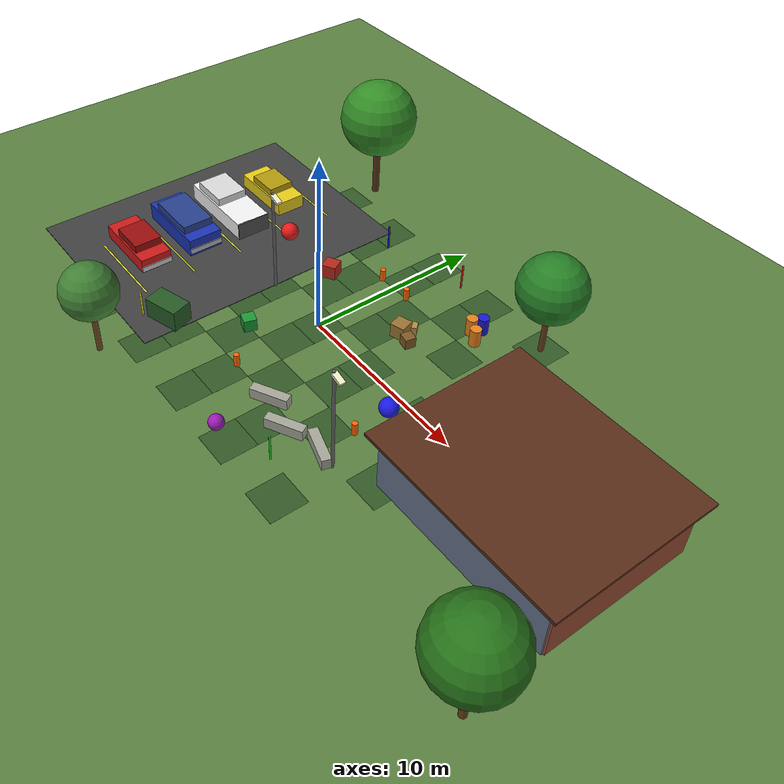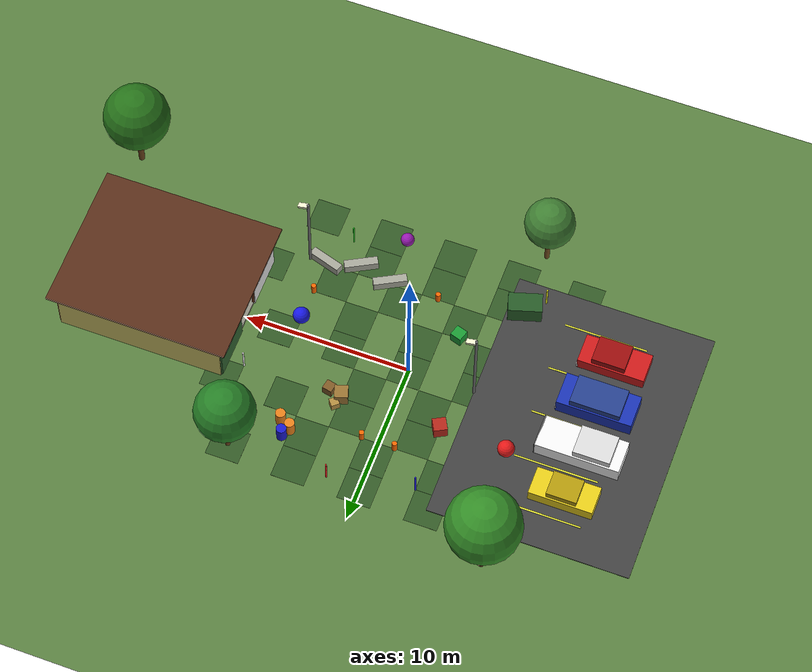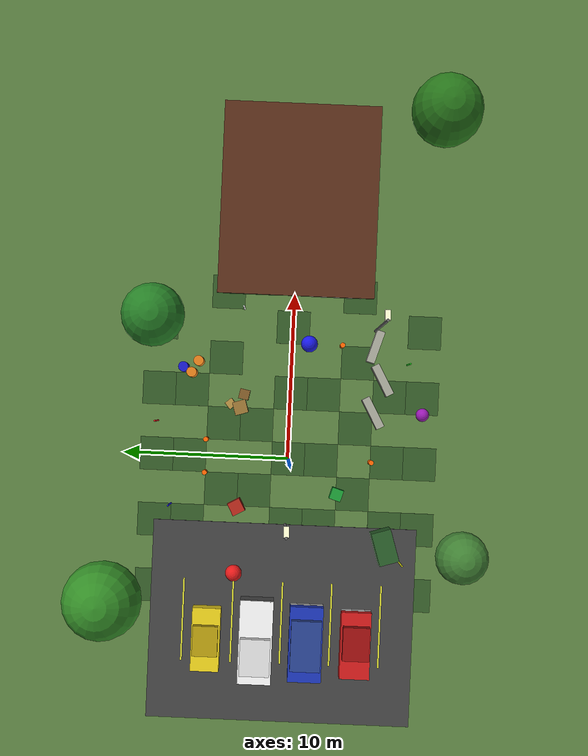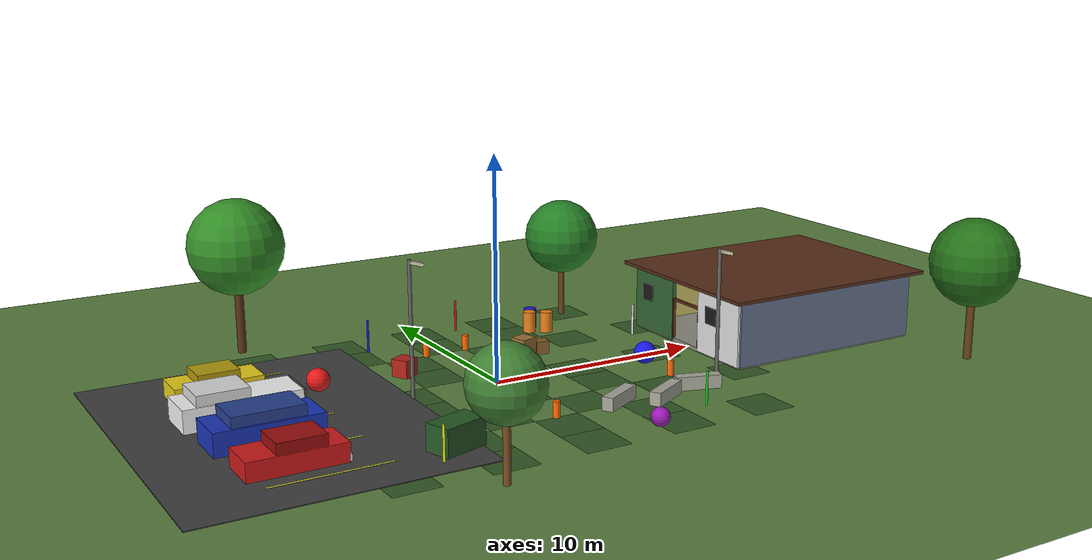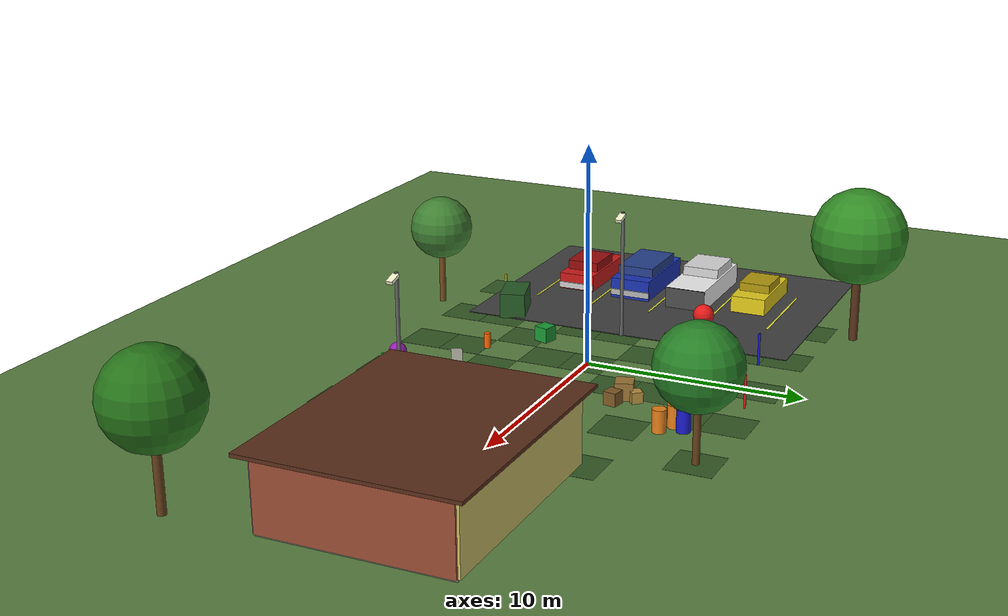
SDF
<sdf version="1.9">
 <world name="iris_sar_field">
  <physics name="1ms" type="ignore">
   <max_step_size>0.001</max_step_size>
   <real_time_factor>1.0</real_time_factor>
  </physics>
  <plugin filename="gz-sim-physics-system" name="gz::sim::systems::Physics"/>
  <plugin filename="gz-sim-sensors-system" name="gz::sim::systems::Sensors">
   <render_engine>ogre2</render_engine>
  </plugin>
  <plugin filename="gz-sim-user-commands-system" name="gz::sim::systems::UserCommands"/>
  <plugin filename="gz-sim-scene-broadcaster-system" name="gz::sim::systems::SceneBroadcaster"/>
  <plugin filename="gz-sim-imu-system" name="gz::sim::systems::Imu"/>
  <plugin filename="gz-sim-navsat-system" name="gz::sim::systems::NavSat"/>
  <plugin filename="gz-sim-apply-link-wrench-system" name="gz::sim::systems::ApplyLinkWrench"/>
  <gravity>0 0 -9.8</gravity>
  <scene><ambient>0.8 0.8 0.8</ambient><background>0.6 0.75 0.9</background><grid>false</grid></scene>
  <spherical_coordinates>
   <latitude_deg>-35.363262</latitude_deg>
   <longitude_deg>149.165237</longitude_deg>
   <elevation>584</elevation>
   <heading_deg>0</heading_deg>
   <surface_model>EARTH_WGS84</surface_model>
  </spherical_coordinates>
  <light type="directional" name="sun">
   <pose>0 0 50 0 0 0</pose>
   <diffuse>0.9 0.85 0.8 1</diffuse>
   <specular>0.3 0.3 0.3 1</specular>
   <direction>-0.4 0.2 -0.8</direction>
  </light>
  <model name="ground_collision">
   <static>true</static>
   <link name="link">
    <collision name="collision">
     <geometry><plane><normal>0 0 1</normal><size>200 200</size></plane></geometry>
    </collision>
   </link>
  </model>
  <model name="ground_base">
   <static>true</static>
   <pose>0 0 0.001 0 0 0</pose>
   <link name="link">
    <visual name="visual">
     <geometry><plane><normal>0 0 1</normal><size>60 60</size></plane></geometry>
     <material><ambient>0.35 0.5 0.25 1</ambient><diffuse>0.35 0.5 0.25 1</diffuse></material>
    </visual>
   </link>
  </model>
  <model name="tile_0_0">
   <static>true</static>
   <pose>0 0 0.002 0 0 0</pose>
   <link name="l">
    <visual name="v">
     <geometry><plane><normal>0 0 1</normal><size>2 2</size></plane></geometry>
     <material><ambient>0.2 0.35 0.15 1</ambient><diffuse>0.2 0.35 0.15 1</diffuse></material>
    </visual>
   </link>
  </model>
  <model name="tile_0_4">
   <static>true</static>
   <pose>4 0 0.002 0 0 0</pose>
   <link name="l">
    <visual name="v">
     <geometry><plane><normal>0 0 1</normal><size>2 2</size></plane></geometry>
     <material><ambient>0.2 0.35 0.15 1</ambient><diffuse>0.2 0.35 0.15 1</diffuse></material>
    </visual>
   </link>
  </model>
  <model name="tile_0_8">
   <static>true</static>
   <pose>8 0 0.002 0 0 0</pose>
   <link name="l">
    <visual name="v">
     <geometry><plane><normal>0 0 1</normal><size>2 2</size></plane></geometry>
     <material><ambient>0.2 0.35 0.15 1</ambient><diffuse>0.2 0.35 0.15 1</diffuse></material>
    </visual>
   </link>
  </model>
  <model name="tile_0_n4">
   <static>true</static>
   <pose>-4 0 0.002 0 0 0</pose>
   <link name="l">
    <visual name="v">
     <geometry><plane><normal>0 0 1</normal><size>2 2</size></plane></geometry>
     <material><ambient>0.2 0.35 0.15 1</ambient><diffuse>0.2 0.35 0.15 1</diffuse></material>
    </visual>
   </link>
  </model>
  <model name="tile_0_n8">
   <static>true</static>
   <pose>-8 0 0.002 0 0 0</pose>
   <link name="l">
    <visual name="v">
     <geometry><plane><normal>0 0 1</normal><size>2 2</size></plane></geometry>
     <material><ambient>0.2 0.35 0.15 1</ambient><diffuse>0.2 0.35 0.15 1</diffuse></material>
    </visual>
   </link>
  </model>
  <model name="tile_0_12">
   <static>true</static>
   <pose>12 0 0.002 0 0 0</pose>
   <link name="l">
    <visual name="v">
     <geometry><plane><normal>0 0 1</normal><size>2 2</size></plane></geometry>
     <material><ambient>0.2 0.35 0.15 1</ambient><diffuse>0.2 0.35 0.15 1</diffuse></material>
    </visual>
   </link>
  </model>
  <model name="tile_0_n12">
   <static>true</static>
   <pose>-12 0 0.002 0 0 0</pose>
   <link name="l">
    <visual name="v">
     <geometry><plane><normal>0 0 1</normal><size>2 2</size></plane></geometry>
     <material><ambient>0.2 0.35 0.15 1</ambient><diffuse>0.2 0.35 0.15 1</diffuse></material>
    </visual>
   </link>
  </model>
  <model name="tile_4_2">
   <static>true</static>
   <pose>2 4 0.002 0 0 0</pose>
   <link name="l">
    <visual name="v">
     <geometry><plane><normal>0 0 1</normal><size>2 2</size></plane></geometry>
     <material><ambient>0.2 0.35 0.15 1</ambient><diffuse>0.2 0.35 0.15 1</diffuse></material>
    </visual>
   </link>
  </model>
  <model name="tile_4_6">
   <static>true</static>
   <pose>6 4 0.002 0 0 0</pose>
   <link name="l">
    <visual name="v">
     <geometry><plane><normal>0 0 1</normal><size>2 2</size></plane></geometry>
     <material><ambient>0.2 0.35 0.15 1</ambient><diffuse>0.2 0.35 0.15 1</diffuse></material>
    </visual>
   </link>
  </model>
  <model name="tile_4_10">
   <static>true</static>
   <pose>10 4 0.002 0 0 0</pose>
   <link name="l">
    <visual name="v">
     <geometry><plane><normal>0 0 1</normal><size>2 2</size></plane></geometry>
     <material><ambient>0.2 0.35 0.15 1</ambient><diffuse>0.2 0.35 0.15 1</diffuse></material>
    </visual>
   </link>
  </model>
  <model name="tile_4_n2">
   <static>true</static>
   <pose>-2 4 0.002 0 0 0</pose>
   <link name="l">
    <visual name="v">
     <geometry><plane><normal>0 0 1</normal><size>2 2</size></plane></geometry>
     <material><ambient>0.2 0.35 0.15 1</ambient><diffuse>0.2 0.35 0.15 1</diffuse></material>
    </visual>
   </link>
  </model>
  <model name="tile_4_n6">
   <static>true</static>
   <pose>-6 4 0.002 0 0 0</pose>
   <link name="l">
    <visual name="v">
     <geometry><plane><normal>0 0 1</normal><size>2 2</size></plane></geometry>
     <material><ambient>0.2 0.35 0.15 1</ambient><diffuse>0.2 0.35 0.15 1</diffuse></material>
    </visual>
   </link>
  </model>
  <model name="tile_4_n10">
   <static>true</static>
   <pose>-10 4 0.002 0 0 0</pose>
   <link name="l">
    <visual name="v">
     <geometry><plane><normal>0 0 1</normal><size>2 2</size></plane></geometry>
     <material><ambient>0.2 0.35 0.15 1</ambient><diffuse>0.2 0.35 0.15 1</diffuse></material>
    </visual>
   </link>
  </model>
  <model name="tile_n4_2">
   <static>true</static>
   <pose>2 -4 0.002 0 0 0</pose>
   <link name="l">
    <visual name="v">
     <geometry><plane><normal>0 0 1</normal><size>2 2</size></plane></geometry>
     <material><ambient>0.2 0.35 0.15 1</ambient><diffuse>0.2 0.35 0.15 1</diffuse></material>
    </visual>
   </link>
  </model>
  <model name="tile_n4_6">
   <static>true</static>
   <pose>6 -4 0.002 0 0 0</pose>
   <link name="l">
    <visual name="v">
     <geometry><plane><normal>0 0 1</normal><size>2 2</size></plane></geometry>
     <material><ambient>0.2 0.35 0.15 1</ambient><diffuse>0.2 0.35 0.15 1</diffuse></material>
    </visual>
   </link>
  </model>
  <model name="tile_n4_10">
   <static>true</static>
   <pose>10 -4 0.002 0 0 0</pose>
   <link name="l">
    <visual name="v">
     <geometry><plane><normal>0 0 1</normal><size>2 2</size></plane></geometry>
     <material><ambient>0.2 0.35 0.15 1</ambient><diffuse>0.2 0.35 0.15 1</diffuse></material>
    </visual>
   </link>
  </model>
  <model name="tile_n4_n2">
   <static>true</static>
   <pose>-2 -4 0.002 0 0 0</pose>
   <link name="l">
    <visual name="v">
     <geometry><plane><normal>0 0 1</normal><size>2 2</size></plane></geometry>
     <material><ambient>0.2 0.35 0.15 1</ambient><diffuse>0.2 0.35 0.15 1</diffuse></material>
    </visual>
   </link>
  </model>
  <model name="tile_n4_n6">
   <static>true</static>
   <pose>-6 -4 0.002 0 0 0</pose>
   <link name="l">
    <visual name="v">
     <geometry><plane><normal>0 0 1</normal><size>2 2</size></plane></geometry>
     <material><ambient>0.2 0.35 0.15 1</ambient><diffuse>0.2 0.35 0.15 1</diffuse></material>
    </visual>
   </link>
  </model>
  <model name="tile_n4_n10">
   <static>true</static>
   <pose>-10 -4 0.002 0 0 0</pose>
   <link name="l">
    <visual name="v">
     <geometry><plane><normal>0 0 1</normal><size>2 2</size></plane></geometry>
     <material><ambient>0.2 0.35 0.15 1</ambient><diffuse>0.2 0.35 0.15 1</diffuse></material>
    </visual>
   </link>
  </model>
  <model name="tile_8_0">
   <static>true</static>
   <pose>0 8 0.002 0 0 0</pose>
   <link name="l">
    <visual name="v">
     <geometry><plane><normal>0 0 1</normal><size>2 2</size></plane></geometry>
     <material><ambient>0.2 0.35 0.15 1</ambient><diffuse>0.2 0.35 0.15 1</diffuse></material>
    </visual>
   </link>
  </model>
  <model name="tile_8_4">
   <static>true</static>
   <pose>4 8 0.002 0 0 0</pose>
   <link name="l">
    <visual name="v">
     <geometry><plane><normal>0 0 1</normal><size>2 2</size></plane></geometry>
     <material><ambient>0.2 0.35 0.15 1</ambient><diffuse>0.2 0.35 0.15 1</diffuse></material>
    </visual>
   </link>
  </model>
  <model name="tile_8_8">
   <static>true</static>
   <pose>8 8 0.002 0 0 0</pose>
   <link name="l">
    <visual name="v">
     <geometry><plane><normal>0 0 1</normal><size>2 2</size></plane></geometry>
     <material><ambient>0.2 0.35 0.15 1</ambient><diffuse>0.2 0.35 0.15 1</diffuse></material>
    </visual>
   </link>
  </model>
  <model name="tile_8_n4">
   <static>true</static>
   <pose>-4 8 0.002 0 0 0</pose>
   <link name="l">
    <visual name="v">
     <geometry><plane><normal>0 0 1</normal><size>2 2</size></plane></geometry>
     <material><ambient>0.2 0.35 0.15 1</ambient><diffuse>0.2 0.35 0.15 1</diffuse></material>
    </visual>
   </link>
  </model>
  <model name="tile_8_n8">
   <static>true</static>
   <pose>-8 8 0.002 0 0 0</pose>
   <link name="l">
    <visual name="v">
     <geometry><plane><normal>0 0 1</normal><size>2 2</size></plane></geometry>
     <material><ambient>0.2 0.35 0.15 1</ambient><diffuse>0.2 0.35 0.15 1</diffuse></material>
    </visual>
   </link>
  </model>
  <model name="tile_n8_0">
   <static>true</static>
   <pose>0 -8 0.002 0 0 0</pose>
   <link name="l">
    <visual name="v">
     <geometry><plane><normal>0 0 1</normal><size>2 2</size></plane></geometry>
     <material><ambient>0.2 0.35 0.15 1</ambient><diffuse>0.2 0.35 0.15 1</diffuse></material>
    </visual>
   </link>
  </model>
  <model name="tile_n8_4">
   <static>true</static>
   <pose>4 -8 0.002 0 0 0</pose>
   <link name="l">
    <visual name="v">
     <geometry><plane><normal>0 0 1</normal><size>2 2</size></plane></geometry>
     <material><ambient>0.2 0.35 0.15 1</ambient><diffuse>0.2 0.35 0.15 1</diffuse></material>
    </visual>
   </link>
  </model>
  <model name="tile_n8_8">
   <static>true</static>
   <pose>8 -8 0.002 0 0 0</pose>
   <link name="l">
    <visual name="v">
     <geometry><plane><normal>0 0 1</normal><size>2 2</size></plane></geometry>
     <material><ambient>0.2 0.35 0.15 1</ambient><diffuse>0.2 0.35 0.15 1</diffuse></material>
    </visual>
   </link>
  </model>
  <model name="tile_n8_n4">
   <static>true</static>
   <pose>-4 -8 0.002 0 0 0</pose>
   <link name="l">
    <visual name="v">
     <geometry><plane><normal>0 0 1</normal><size>2 2</size></plane></geometry>
     <material><ambient>0.2 0.35 0.15 1</ambient><diffuse>0.2 0.35 0.15 1</diffuse></material>
    </visual>
   </link>
  </model>
  <model name="tile_n8_n8">
   <static>true</static>
   <pose>-8 -8 0.002 0 0 0</pose>
   <link name="l">
    <visual name="v">
     <geometry><plane><normal>0 0 1</normal><size>2 2</size></plane></geometry>
     <material><ambient>0.2 0.35 0.15 1</ambient><diffuse>0.2 0.35 0.15 1</diffuse></material>
    </visual>
   </link>
  </model>
  <model name="tile_2_2">
   <static>true</static>
   <pose>2 2 0.002 0 0 0</pose>
   <link name="l">
    <visual name="v">
     <geometry><plane><normal>0 0 1</normal><size>2 2</size></plane></geometry>
     <material><ambient>0.2 0.35 0.15 1</ambient><diffuse>0.2 0.35 0.15 1</diffuse></material>
    </visual>
   </link>
  </model>
  <model name="tile_2_n2">
   <static>true</static>
   <pose>-2 2 0.002 0 0 0</pose>
   <link name="l">
    <visual name="v">
     <geometry><plane><normal>0 0 1</normal><size>2 2</size></plane></geometry>
     <material><ambient>0.2 0.35 0.15 1</ambient><diffuse>0.2 0.35 0.15 1</diffuse></material>
    </visual>
   </link>
  </model>
  <model name="tile_n2_0">
   <static>true</static>
   <pose>0 -2 0.002 0 0 0</pose>
   <link name="l">
    <visual name="v">
     <geometry><plane><normal>0 0 1</normal><size>2 2</size></plane></geometry>
     <material><ambient>0.2 0.35 0.15 1</ambient><diffuse>0.2 0.35 0.15 1</diffuse></material>
    </visual>
   </link>
  </model>
  <model name="tile_n2_4">
   <static>true</static>
   <pose>4 -2 0.002 0 0 0</pose>
   <link name="l">
    <visual name="v">
     <geometry><plane><normal>0 0 1</normal><size>2 2</size></plane></geometry>
     <material><ambient>0.2 0.35 0.15 1</ambient><diffuse>0.2 0.35 0.15 1</diffuse></material>
    </visual>
   </link>
  </model>
  <model name="tile_n2_n4">
   <static>true</static>
   <pose>-4 -2 0.002 0 0 0</pose>
   <link name="l">
    <visual name="v">
     <geometry><plane><normal>0 0 1</normal><size>2 2</size></plane></geometry>
     <material><ambient>0.2 0.35 0.15 1</ambient><diffuse>0.2 0.35 0.15 1</diffuse></material>
    </visual>
   </link>
  </model>
  <model name="tile_6_0">
   <static>true</static>
   <pose>0 6 0.002 0 0 0</pose>
   <link name="l">
    <visual name="v">
     <geometry><plane><normal>0 0 1</normal><size>2 2</size></plane></geometry>
     <material><ambient>0.2 0.35 0.15 1</ambient><diffuse>0.2 0.35 0.15 1</diffuse></material>
    </visual>
   </link>
  </model>
  <model name="tile_6_4">
   <static>true</static>
   <pose>4 6 0.002 0 0 0</pose>
   <link name="l">
    <visual name="v">
     <geometry><plane><normal>0 0 1</normal><size>2 2</size></plane></geometry>
     <material><ambient>0.2 0.35 0.15 1</ambient><diffuse>0.2 0.35 0.15 1</diffuse></material>
    </visual>
   </link>
  </model>
  <model name="tile_6_n4">
   <static>true</static>
   <pose>-4 6 0.002 0 0 0</pose>
   <link name="l">
    <visual name="v">
     <geometry><plane><normal>0 0 1</normal><size>2 2</size></plane></geometry>
     <material><ambient>0.2 0.35 0.15 1</ambient><diffuse>0.2 0.35 0.15 1</diffuse></material>
    </visual>
   </link>
  </model>
  <model name="tile_n6_0">
   <static>true</static>
   <pose>0 -6 0.002 0 0 0</pose>
   <link name="l">
    <visual name="v">
     <geometry><plane><normal>0 0 1</normal><size>2 2</size></plane></geometry>
     <material><ambient>0.2 0.35 0.15 1</ambient><diffuse>0.2 0.35 0.15 1</diffuse></material>
    </visual>
   </link>
  </model>
  <model name="tile_n6_4">
   <static>true</static>
   <pose>4 -6 0.002 0 0 0</pose>
   <link name="l">
    <visual name="v">
     <geometry><plane><normal>0 0 1</normal><size>2 2</size></plane></geometry>
     <material><ambient>0.2 0.35 0.15 1</ambient><diffuse>0.2 0.35 0.15 1</diffuse></material>
    </visual>
   </link>
  </model>
  <model name="tile_n6_n4">
   <static>true</static>
   <pose>-4 -6 0.002 0 0 0</pose>
   <link name="l">
    <visual name="v">
     <geometry><plane><normal>0 0 1</normal><size>2 2</size></plane></geometry>
     <material><ambient>0.2 0.35 0.15 1</ambient><diffuse>0.2 0.35 0.15 1</diffuse></material>
    </visual>
   </link>
  </model>
  <model name="house_floor">
   <static>true</static>
   <pose>15 0 0.1 0 0 0</pose>
   <link name="link">
    <collision name="collision"><geometry><box><size>10 8 0.2</size></box></geometry></collision>
    <visual name="visual">
     <geometry><box><size>10 8 0.2</size></box></geometry>
     <material><ambient>0.55 0.55 0.5 1</ambient><diffuse>0.55 0.55 0.5 1</diffuse></material>
    </visual>
   </link>
  </model>
  <model name="house_wall_back">
   <static>true</static>
   <pose>20 0 1.6 0 0 0</pose>
   <link name="link">
    <collision name="collision"><geometry><box><size>0.2 8 3</size></box></geometry></collision>
    <visual name="visual">
     <geometry><box><size>0.2 8 3</size></box></geometry>
     <material><ambient>0.6 0.3 0.2 1</ambient><diffuse>0.6 0.3 0.2 1</diffuse></material>
    </visual>
   </link>
  </model>
  <model name="house_wall_left">
   <static>true</static>
   <pose>15 -4 1.6 0 0 0</pose>
   <link name="link">
    <collision name="collision"><geometry><box><size>10 0.2 3</size></box></geometry></collision>
    <visual name="visual">
     <geometry><box><size>10 0.2 3</size></box></geometry>
     <material><ambient>0.4 0.45 0.55 1</ambient><diffuse>0.4 0.45 0.55 1</diffuse></material>
    </visual>
   </link>
  </model>
  <model name="house_wall_right">
   <static>true</static>
   <pose>15 4 1.6 0 0 0</pose>
   <link name="link">
    <collision name="collision"><geometry><box><size>10 0.2 3</size></box></geometry></collision>
    <visual name="visual">
     <geometry><box><size>10 0.2 3</size></box></geometry>
     <material><ambient>0.8 0.75 0.4 1</ambient><diffuse>0.8 0.75 0.4 1</diffuse></material>
    </visual>
   </link>
  </model>
  <model name="house_wall_front_left">
   <static>true</static>
   <pose>10 -2.5 1.6 0 0 0</pose>
   <link name="link">
    <collision name="collision"><geometry><box><size>0.2 3 3</size></box></geometry></collision>
    <visual name="visual">
     <geometry><box><size>0.2 3 3</size></box></geometry>
     <material><ambient>0.9 0.9 0.9 1</ambient><diffuse>0.9 0.9 0.9 1</diffuse></material>
    </visual>
   </link>
  </model>
  <model name="house_wall_front_right">
   <static>true</static>
   <pose>10 2.5 1.6 0 0 0</pose>
   <link name="link">
    <collision name="collision"><geometry><box><size>0.2 3 3</size></box></geometry></collision>
    <visual name="visual">
     <geometry><box><size>0.2 3 3</size></box></geometry>
     <material><ambient>0.2 0.4 0.2 1</ambient><diffuse>0.2 0.4 0.2 1</diffuse></material>
    </visual>
   </link>
  </model>
  <model name="house_roof">
   <static>true</static>
   <pose>15 0 3.2 0 0 0</pose>
   <link name="link">
    <collision name="collision"><geometry><box><size>11 9 0.15</size></box></geometry></collision>
    <visual name="visual">
     <geometry><box><size>11 9 0.15</size></box></geometry>
     <material><ambient>0.35 0.18 0.1 1</ambient><diffuse>0.35 0.18 0.1 1</diffuse></material>
    </visual>
   </link>
  </model>
  <model name="window_frame_1">
   <static>true</static>
   <pose>9.89 -2 2.0 0 0 0</pose>
   <link name="link">
    <visual name="v">
     <geometry><box><size>0.05 0.8 0.8</size></box></geometry>
     <material><ambient>0.1 0.1 0.1 1</ambient><diffuse>0.1 0.1 0.1 1</diffuse></material>
    </visual>
   </link>
  </model>
  <model name="window_frame_2">
   <static>true</static>
   <pose>9.89 3 2.0 0 0 0</pose>
   <link name="link">
    <visual name="v">
     <geometry><box><size>0.05 0.8 0.8</size></box></geometry>
     <material><ambient>0.1 0.1 0.1 1</ambient><diffuse>0.1 0.1 0.1 1</diffuse></material>
    </visual>
   </link>
  </model>
  <model name="door_frame">
   <static>true</static>
   <pose>10 0 1.2 0 0 0</pose>
   <link name="link">
    <visual name="top">
     <pose>0 0 0.9 0 0 0</pose>
     <geometry><box><size>0.15 2.1 0.1</size></box></geometry>
     <material><ambient>0.4 0.2 0.1 1</ambient><diffuse>0.4 0.2 0.1 1</diffuse></material>
    </visual>
    <visual name="left">
     <pose>0 -1 0 0 0 0</pose>
     <geometry><box><size>0.15 0.1 1.9</size></box></geometry>
     <material><ambient>0.4 0.2 0.1 1</ambient><diffuse>0.4 0.2 0.1 1</diffuse></material>
    </visual>
    <visual name="right">
     <pose>0 1 0 0 0 0</pose>
     <geometry><box><size>0.15 0.1 1.9</size></box></geometry>
     <material><ambient>0.4 0.2 0.1 1</ambient><diffuse>0.4 0.2 0.1 1</diffuse></material>
    </visual>
   </link>
  </model>
  <model name="parking_lot">
   <static>true</static>
   <pose>-10 0 0.02 0 0 0</pose>
   <link name="link">
    <collision name="collision"><geometry><box><size>12 16 0.04</size></box></geometry></collision>
    <visual name="visual">
     <geometry><box><size>12 16 0.04</size></box></geometry>
     <material><ambient>0.25 0.25 0.25 1</ambient><diffuse>0.25 0.25 0.25 1</diffuse></material>
    </visual>
   </link>
  </model>
  <model name="pl1">
   <static>true</static>
   <pose>-10 -6 0.05 0 0 0</pose>
   <link name="l">
    <visual name="v">
     <geometry><box><size>5 0.1 0.01</size></box></geometry>
     <material><ambient>0.9 0.9 0.2 1</ambient><diffuse>0.9 0.9 0.2 1</diffuse></material>
    </visual>
   </link>
  </model>
  <model name="pl2">
   <static>true</static>
   <pose>-10 -3 0.05 0 0 0</pose>
   <link name="l">
    <visual name="v">
     <geometry><box><size>5 0.1 0.01</size></box></geometry>
     <material><ambient>0.9 0.9 0.2 1</ambient><diffuse>0.9 0.9 0.2 1</diffuse></material>
    </visual>
   </link>
  </model>
  <model name="pl3">
   <static>true</static>
   <pose>-10 0 0.05 0 0 0</pose>
   <link name="l">
    <visual name="v">
     <geometry><box><size>5 0.1 0.01</size></box></geometry>
     <material><ambient>0.9 0.9 0.2 1</ambient><diffuse>0.9 0.9 0.2 1</diffuse></material>
    </visual>
   </link>
  </model>
  <model name="pl4">
   <static>true</static>
   <pose>-10 3 0.05 0 0 0</pose>
   <link name="l">
    <visual name="v">
     <geometry><box><size>5 0.1 0.01</size></box></geometry>
     <material><ambient>0.9 0.9 0.2 1</ambient><diffuse>0.9 0.9 0.2 1</diffuse></material>
    </visual>
   </link>
  </model>
  <model name="pl5">
   <static>true</static>
   <pose>-10 6 0.05 0 0 0</pose>
   <link name="l">
    <visual name="v">
     <geometry><box><size>5 0.1 0.01</size></box></geometry>
     <material><ambient>0.9 0.9 0.2 1</ambient><diffuse>0.9 0.9 0.2 1</diffuse></material>
    </visual>
   </link>
  </model>
  <model name="car_red">
   <static>true</static>
   <pose>-11 -4.5 0.5 0 0 0</pose>
   <link name="link">
    <collision name="c"><geometry><box><size>4 1.8 1.0</size></box></geometry></collision>
    <visual name="body">
     <geometry><box><size>4 1.8 0.8</size></box></geometry>
     <material><ambient>0.8 0.1 0.1 1</ambient><diffuse>0.8 0.1 0.1 1</diffuse></material>
    </visual>
    <visual name="roof">
     <pose>0.2 0 0.6 0 0 0</pose>
     <geometry><box><size>2 1.6 0.5</size></box></geometry>
     <material><ambient>0.6 0.05 0.05 1</ambient><diffuse>0.6 0.05 0.05 1</diffuse></material>
    </visual>
    <visual name="bumper">
     <pose>2 0 -0.2 0 0 0</pose>
     <geometry><box><size>0.1 1.8 0.3</size></box></geometry>
     <material><ambient>0.8 0.8 0.8 1</ambient><diffuse>0.8 0.8 0.8 1</diffuse></material>
    </visual>
   </link>
  </model>
  <model name="car_blue">
   <static>true</static>
   <pose>-11 -1.5 0.6 0 0 0</pose>
   <link name="link">
    <collision name="c"><geometry><box><size>4.5 2 1.2</size></box></geometry></collision>
    <visual name="body">
     <geometry><box><size>4.5 2 1.0</size></box></geometry>
     <material><ambient>0.1 0.2 0.7 1</ambient><diffuse>0.1 0.2 0.7 1</diffuse></material>
    </visual>
    <visual name="roof">
     <pose>0 0 0.7 0 0 0</pose>
     <geometry><box><size>3 1.8 0.5</size></box></geometry>
     <material><ambient>0.15 0.25 0.55 1</ambient><diffuse>0.15 0.25 0.55 1</diffuse></material>
    </visual>
    <visual name="bumper">
     <pose>2.25 0 -0.2 0 0 0</pose>
     <geometry><box><size>0.1 2 0.3</size></box></geometry>
     <material><ambient>0.7 0.7 0.7 1</ambient><diffuse>0.7 0.7 0.7 1</diffuse></material>
    </visual>
   </link>
  </model>
  <model name="car_white">
   <static>true</static>
   <pose>-11 1.5 0.6 0 0 0</pose>
   <link name="link">
    <collision name="c"><geometry><box><size>5 2 1.2</size></box></geometry></collision>
    <visual name="body">
     <geometry><box><size>5 2 1.0</size></box></geometry>
     <material><ambient>0.95 0.95 0.95 1</ambient><diffuse>0.95 0.95 0.95 1</diffuse></material>
    </visual>
    <visual name="cab">
     <pose>-0.8 0 0.7 0 0 0</pose>
     <geometry><box><size>2.2 1.8 0.5</size></box></geometry>
     <material><ambient>0.85 0.85 0.85 1</ambient><diffuse>0.85 0.85 0.85 1</diffuse></material>
    </visual>
    <visual name="tailgate">
     <pose>2.5 0 0 0 0 0</pose>
     <geometry><box><size>0.1 2 1.0</size></box></geometry>
     <material><ambient>0.3 0.3 0.3 1</ambient><diffuse>0.3 0.3 0.3 1</diffuse></material>
    </visual>
   </link>
  </model>
  <model name="car_yellow">
   <static>true</static>
   <pose>-11 4.5 0.5 0 0 0</pose>
   <link name="link">
    <collision name="c"><geometry><box><size>3.8 1.7 1.0</size></box></geometry></collision>
    <visual name="body">
     <geometry><box><size>3.8 1.7 0.8</size></box></geometry>
     <material><ambient>0.9 0.8 0.1 1</ambient><diffuse>0.9 0.8 0.1 1</diffuse></material>
    </visual>
    <visual name="roof">
     <pose>0 0 0.55 0 0 0</pose>
     <geometry><box><size>1.8 1.5 0.5</size></box></geometry>
     <material><ambient>0.7 0.6 0.05 1</ambient><diffuse>0.7 0.6 0.05 1</diffuse></material>
    </visual>
   </link>
  </model>
  <model name="barrel_1">
   <static>true</static>
   <pose>5 6 0.5 0 0 0</pose>
   <link name="l">
    <collision name="c">
     <geometry><cylinder><radius>0.3</radius><length>1.0</length></cylinder></geometry>
    </collision>
    <visual name="v">
     <geometry><cylinder><radius>0.3</radius><length>1.0</length></cylinder></geometry>
     <material><ambient>0.9 0.5 0.1 1</ambient><diffuse>0.9 0.5 0.1 1</diffuse></material>
    </visual>
   </link>
  </model>
  <model name="barrel_2">
   <static>true</static>
   <pose>5.7 5.6 0.5 0 0 0</pose>
   <link name="l">
    <collision name="c">
     <geometry><cylinder><radius>0.3</radius><length>1.0</length></cylinder></geometry>
    </collision>
    <visual name="v">
     <geometry><cylinder><radius>0.3</radius><length>1.0</length></cylinder></geometry>
     <material><ambient>0.9 0.5 0.1 1</ambient><diffuse>0.9 0.5 0.1 1</diffuse></material>
    </visual>
   </link>
  </model>
  <model name="barrel_3">
   <static>true</static>
   <pose>5.3 6.5 0.5 0 0 0</pose>
   <link name="l">
    <collision name="c">
     <geometry><cylinder><radius>0.3</radius><length>1.0</length></cylinder></geometry>
    </collision>
    <visual name="v">
     <geometry><cylinder><radius>0.3</radius><length>1.0</length></cylinder></geometry>
     <material><ambient>0.1 0.1 0.8 1</ambient><diffuse>0.1 0.1 0.8 1</diffuse></material>
    </visual>
   </link>
  </model>
  <model name="crate_1">
   <static>true</static>
   <pose>3 3 0.4 0 0 0.3</pose>
   <link name="l">
    <collision name="c"><geometry><box><size>0.8 0.8 0.8</size></box></geometry></collision>
    <visual name="v">
     <geometry><box><size>0.8 0.8 0.8</size></box></geometry>
     <material><ambient>0.6 0.45 0.2 1</ambient><diffuse>0.6 0.45 0.2 1</diffuse></material>
    </visual>
   </link>
  </model>
  <model name="crate_2">
   <static>true</static>
   <pose>3.8 2.8 0.3 0 0 -0.2</pose>
   <link name="l">
    <collision name="c"><geometry><box><size>0.6 0.6 0.6</size></box></geometry></collision>
    <visual name="v">
     <geometry><box><size>0.6 0.6 0.6</size></box></geometry>
     <material><ambient>0.5 0.35 0.15 1</ambient><diffuse>0.5 0.35 0.15 1</diffuse></material>
    </visual>
   </link>
  </model>
  <model name="crate_3">
   <static>true</static>
   <pose>3.2 3.6 0.25 0 0 0.7</pose>
   <link name="l">
    <collision name="c"><geometry><box><size>0.5 0.5 0.5</size></box></geometry></collision>
    <visual name="v">
     <geometry><box><size>0.5 0.5 0.5</size></box></geometry>
     <material><ambient>0.7 0.55 0.25 1</ambient><diffuse>0.7 0.55 0.25 1</diffuse></material>
    </visual>
   </link>
  </model>
  <model name="crate_red">
   <static>true</static>
   <pose>-3 3 0.4 0 0 0.5</pose>
   <link name="l">
    <collision name="c"><geometry><box><size>0.8 0.8 0.8</size></box></geometry></collision>
    <visual name="v">
     <geometry><box><size>0.8 0.8 0.8</size></box></geometry>
     <material><ambient>0.7 0.15 0.1 1</ambient><diffuse>0.7 0.15 0.1 1</diffuse></material>
    </visual>
   </link>
  </model>
  <model name="crate_green">
   <static>true</static>
   <pose>-2 -3 0.35 0 0 -0.3</pose>
   <link name="l">
    <collision name="c"><geometry><box><size>0.7 0.7 0.7</size></box></geometry></collision>
    <visual name="v">
     <geometry><box><size>0.7 0.7 0.7</size></box></geometry>
     <material><ambient>0.1 0.6 0.2 1</ambient><diffuse>0.1 0.6 0.2 1</diffuse></material>
    </visual>
   </link>
  </model>
  <model name="cone_1">
   <static>true</static>
   <pose>1 5 0.35 0 0 0</pose>
   <link name="l">
    <visual name="v">
     <geometry><cylinder><radius>0.15</radius><length>0.7</length></cylinder></geometry>
     <material><ambient>1.0 0.4 0.0 1</ambient><diffuse>1.0 0.4 0.0 1</diffuse></material>
    </visual>
   </link>
  </model>
  <model name="cone_2">
   <static>true</static>
   <pose>-1 5 0.35 0 0 0</pose>
   <link name="l">
    <visual name="v">
     <geometry><cylinder><radius>0.15</radius><length>0.7</length></cylinder></geometry>
     <material><ambient>1.0 0.4 0.0 1</ambient><diffuse>1.0 0.4 0.0 1</diffuse></material>
    </visual>
   </link>
  </model>
  <model name="cone_3">
   <static>true</static>
   <pose>0 -5 0.35 0 0 0</pose>
   <link name="l">
    <visual name="v">
     <geometry><cylinder><radius>0.15</radius><length>0.7</length></cylinder></geometry>
     <material><ambient>1.0 0.4 0.0 1</ambient><diffuse>1.0 0.4 0.0 1</diffuse></material>
    </visual>
   </link>
  </model>
  <model name="cone_4">
   <static>true</static>
   <pose>7 -3 0.35 0 0 0</pose>
   <link name="l">
    <visual name="v">
     <geometry><cylinder><radius>0.15</radius><length>0.7</length></cylinder></geometry>
     <material><ambient>1.0 0.4 0.0 1</ambient><diffuse>1.0 0.4 0.0 1</diffuse></material>
    </visual>
   </link>
  </model>
  <model name="dumpster">
   <static>true</static>
   <pose>-5 -6 0.6 0 0 0.3</pose>
   <link name="l">
    <collision name="c"><geometry><box><size>2.0 1.2 1.2</size></box></geometry></collision>
    <visual name="v">
     <geometry><box><size>2.0 1.2 1.2</size></box></geometry>
     <material><ambient>0.15 0.35 0.15 1</ambient><diffuse>0.15 0.35 0.15 1</diffuse></material>
    </visual>
   </link>
  </model>
  <model name="light_pole_1">
   <static>true</static>
   <pose>-4 0 0 0 0 0</pose>
   <link name="l">
    <visual name="pole">
     <pose>0 0 3 0 0 0</pose>
     <geometry><cylinder><radius>0.08</radius><length>6</length></cylinder></geometry>
     <material><ambient>0.4 0.4 0.4 1</ambient><diffuse>0.4 0.4 0.4 1</diffuse></material>
    </visual>
    <visual name="lamp">
     <pose>0.3 0 5.8 0 0.3 0</pose>
     <geometry><box><size>0.6 0.3 0.15</size></box></geometry>
     <material><ambient>0.95 0.95 0.8 1</ambient><diffuse>0.95 0.95 0.8 1</diffuse></material>
    </visual>
   </link>
  </model>
  <model name="light_pole_2">
   <static>true</static>
   <pose>8 -5 0 0 0 0</pose>
   <link name="l">
    <visual name="pole">
     <pose>0 0 3 0 0 0</pose>
     <geometry><cylinder><radius>0.08</radius><length>6</length></cylinder></geometry>
     <material><ambient>0.4 0.4 0.4 1</ambient><diffuse>0.4 0.4 0.4 1</diffuse></material>
    </visual>
    <visual name="lamp">
     <pose>0.3 0 5.8 0 0.3 0</pose>
     <geometry><box><size>0.6 0.3 0.15</size></box></geometry>
     <material><ambient>0.95 0.95 0.8 1</ambient><diffuse>0.95 0.95 0.8 1</diffuse></material>
    </visual>
   </link>
  </model>
  <model name="barrier_1">
   <static>true</static>
   <pose>3 -5 0.3 0 0 0.5</pose>
   <link name="l">
    <collision name="c"><geometry><box><size>2.0 0.5 0.6</size></box></geometry></collision>
    <visual name="v">
     <geometry><box><size>2.0 0.5 0.6</size></box></geometry>
     <material><ambient>0.65 0.65 0.6 1</ambient><diffuse>0.65 0.65 0.6 1</diffuse></material>
    </visual>
   </link>
  </model>
  <model name="barrier_2">
   <static>true</static>
   <pose>5 -5.5 0.3 0 0 0.5</pose>
   <link name="l">
    <collision name="c"><geometry><box><size>2.0 0.5 0.6</size></box></geometry></collision>
    <visual name="v">
     <geometry><box><size>2.0 0.5 0.6</size></box></geometry>
     <material><ambient>0.65 0.65 0.6 1</ambient><diffuse>0.65 0.65 0.6 1</diffuse></material>
    </visual>
   </link>
  </model>
  <model name="barrier_3">
   <static>true</static>
   <pose>7 -5 0.3 0 0 -0.3</pose>
   <link name="l">
    <collision name="c"><geometry><box><size>2.0 0.5 0.6</size></box></geometry></collision>
    <visual name="v">
     <geometry><box><size>2.0 0.5 0.6</size></box></geometry>
     <material><ambient>0.65 0.65 0.6 1</ambient><diffuse>0.65 0.65 0.6 1</diffuse></material>
    </visual>
   </link>
  </model>
  <model name="post_red">
   <static>true</static>
   <pose>2 8 0.75 0 0 0</pose>
   <link name="l">
    <visual name="v">
     <geometry><cylinder><radius>0.05</radius><length>1.5</length></cylinder></geometry>
     <material><ambient>0.9 0.1 0.1 1</ambient><diffuse>0.9 0.1 0.1 1</diffuse></material>
    </visual>
   </link>
  </model>
  <model name="post_blue">
   <static>true</static>
   <pose>-3 7 0.75 0 0 0</pose>
   <link name="l">
    <visual name="v">
     <geometry><cylinder><radius>0.05</radius><length>1.5</length></cylinder></geometry>
     <material><ambient>0.1 0.1 0.9 1</ambient><diffuse>0.1 0.1 0.9 1</diffuse></material>
    </visual>
   </link>
  </model>
  <model name="post_green">
   <static>true</static>
   <pose>6 -7 0.75 0 0 0</pose>
   <link name="l">
    <visual name="v">
     <geometry><cylinder><radius>0.05</radius><length>1.5</length></cylinder></geometry>
     <material><ambient>0.1 0.8 0.1 1</ambient><diffuse>0.1 0.8 0.1 1</diffuse></material>
    </visual>
   </link>
  </model>
  <model name="post_yellow">
   <static>true</static>
   <pose>-6 -7 0.75 0 0 0</pose>
   <link name="l">
    <visual name="v">
     <geometry><cylinder><radius>0.05</radius><length>1.5</length></cylinder></geometry>
     <material><ambient>0.9 0.9 0.1 1</ambient><diffuse>0.9 0.9 0.1 1</diffuse></material>
    </visual>
   </link>
  </model>
  <model name="post_white">
   <static>true</static>
   <pose>9 3 0.75 0 0 0</pose>
   <link name="l">
    <visual name="v">
     <geometry><cylinder><radius>0.05</radius><length>1.5</length></cylinder></geometry>
     <material><ambient>0.95 0.95 0.95 1</ambient><diffuse>0.95 0.95 0.95 1</diffuse></material>
    </visual>
   </link>
  </model>
  <model name="tree_1">
   <static>true</static>
   <pose>8 8 0 0 0 0</pose>
   <link name="l">
    <visual name="trunk">
     <pose>0 0 1.5 0 0 0</pose>
     <geometry><cylinder><radius>0.15</radius><length>3</length></cylinder></geometry>
     <material><ambient>0.4 0.25 0.1 1</ambient><diffuse>0.4 0.25 0.1 1</diffuse></material>
    </visual>
    <visual name="canopy">
     <pose>0 0 4 0 0 0</pose>
     <geometry><sphere><radius>1.8</radius></sphere></geometry>
     <material><ambient>0.15 0.5 0.15 1</ambient><diffuse>0.15 0.5 0.15 1</diffuse></material>
    </visual>
   </link>
  </model>
  <model name="tree_2">
   <static>true</static>
   <pose>-8 10 0 0 0 0</pose>
   <link name="l">
    <visual name="trunk">
     <pose>0 0 2 0 0 0</pose>
     <geometry><cylinder><radius>0.2</radius><length>4</length></cylinder></geometry>
     <material><ambient>0.35 0.2 0.1 1</ambient><diffuse>0.35 0.2 0.1 1</diffuse></material>
    </visual>
    <visual name="canopy">
     <pose>0 0 5 0 0 0</pose>
     <geometry><sphere><radius>2.2</radius></sphere></geometry>
     <material><ambient>0.2 0.55 0.15 1</ambient><diffuse>0.2 0.55 0.15 1</diffuse></material>
    </visual>
   </link>
  </model>
  <model name="tree_3">
   <static>true</static>
   <pose>20 -8 0 0 0 0</pose>
   <link name="l">
    <visual name="trunk">
     <pose>0 0 1.8 0 0 0</pose>
     <geometry><cylinder><radius>0.18</radius><length>3.6</length></cylinder></geometry>
     <material><ambient>0.4 0.25 0.1 1</ambient><diffuse>0.4 0.25 0.1 1</diffuse></material>
    </visual>
    <visual name="canopy">
     <pose>0 0 4.5 0 0 0</pose>
     <geometry><sphere><radius>2.0</radius></sphere></geometry>
     <material><ambient>0.15 0.45 0.1 1</ambient><diffuse>0.15 0.45 0.1 1</diffuse></material>
    </visual>
   </link>
  </model>
  <model name="tree_4">
   <static>true</static>
   <pose>-5 -10 0 0 0 0</pose>
   <link name="l">
    <visual name="trunk">
     <pose>0 0 1.5 0 0 0</pose>
     <geometry><cylinder><radius>0.15</radius><length>3</length></cylinder></geometry>
     <material><ambient>0.45 0.3 0.12 1</ambient><diffuse>0.45 0.3 0.12 1</diffuse></material>
    </visual>
    <visual name="canopy">
     <pose>0 0 3.8 0 0 0</pose>
     <geometry><sphere><radius>1.5</radius></sphere></geometry>
     <material><ambient>0.25 0.5 0.2 1</ambient><diffuse>0.25 0.5 0.2 1</diffuse></material>
    </visual>
   </link>
  </model>
  <model name="sphere_red">
   <static>true</static>
   <pose>-7 3 0.5 0 0 0</pose>
   <link name="l">
    <visual name="v">
     <geometry><sphere><radius>0.5</radius></sphere></geometry>
     <material><ambient>0.9 0.1 0.1 1</ambient><diffuse>0.9 0.1 0.1 1</diffuse></material>
    </visual>
   </link>
  </model>
  <model name="sphere_blue">
   <static>true</static>
   <pose>7 -1 0.5 0 0 0</pose>
   <link name="l">
    <visual name="v">
     <geometry><sphere><radius>0.5</radius></sphere></geometry>
     <material><ambient>0.1 0.1 0.9 1</ambient><diffuse>0.1 0.1 0.9 1</diffuse></material>
    </visual>
   </link>
  </model>
  <model name="sphere_purple">
   <static>true</static>
   <pose>3 -8 0.4 0 0 0</pose>
   <link name="l">
    <visual name="v">
     <geometry><sphere><radius>0.4</radius></sphere></geometry>
     <material><ambient>0.6 0.1 0.7 1</ambient><diffuse>0.6 0.1 0.7 1</diffuse></material>
    </visual>
   </link>
  </model>
 </world>
</sdf>
